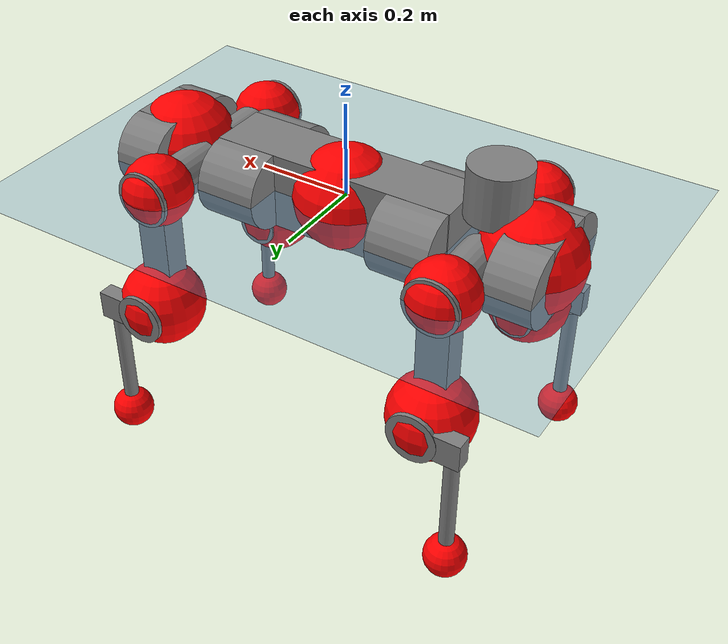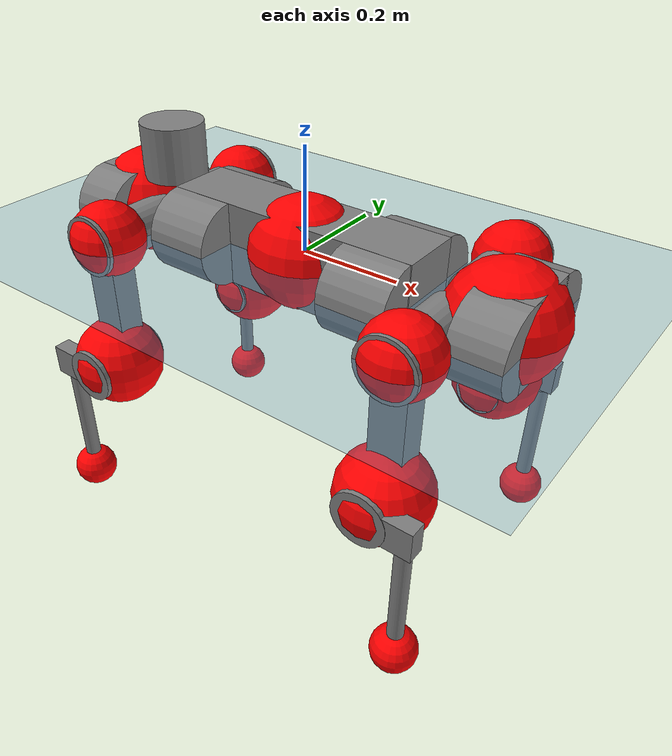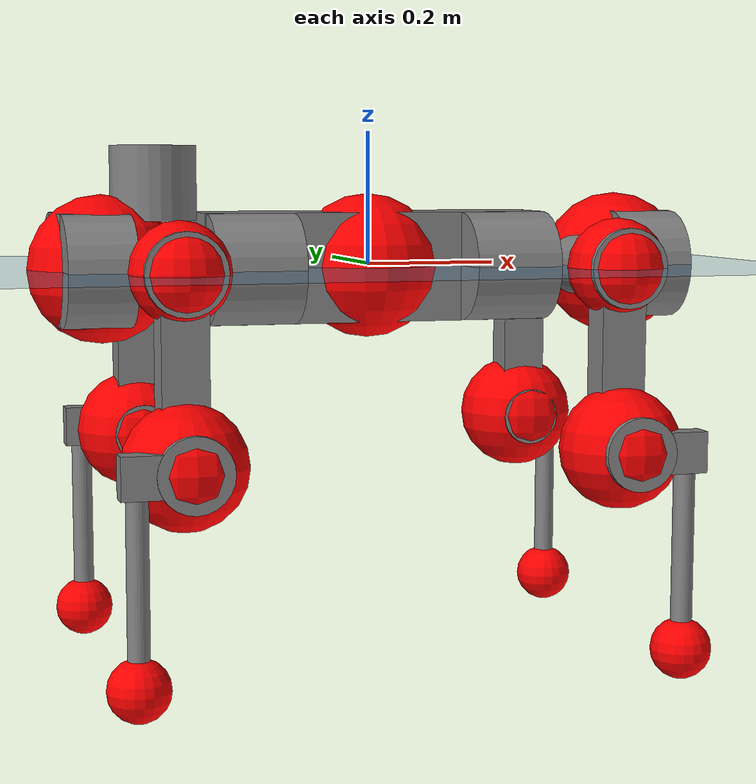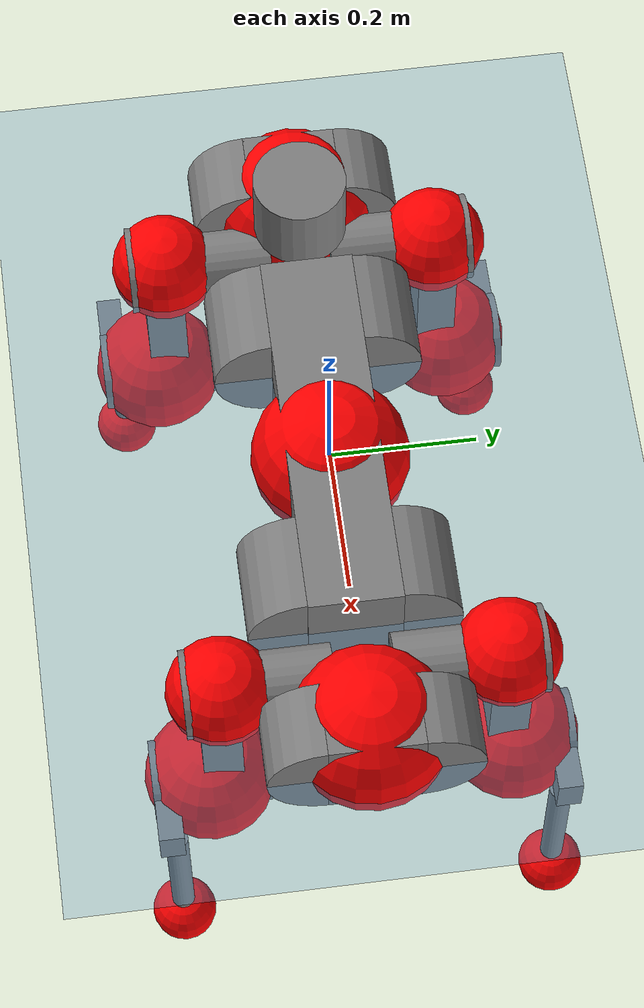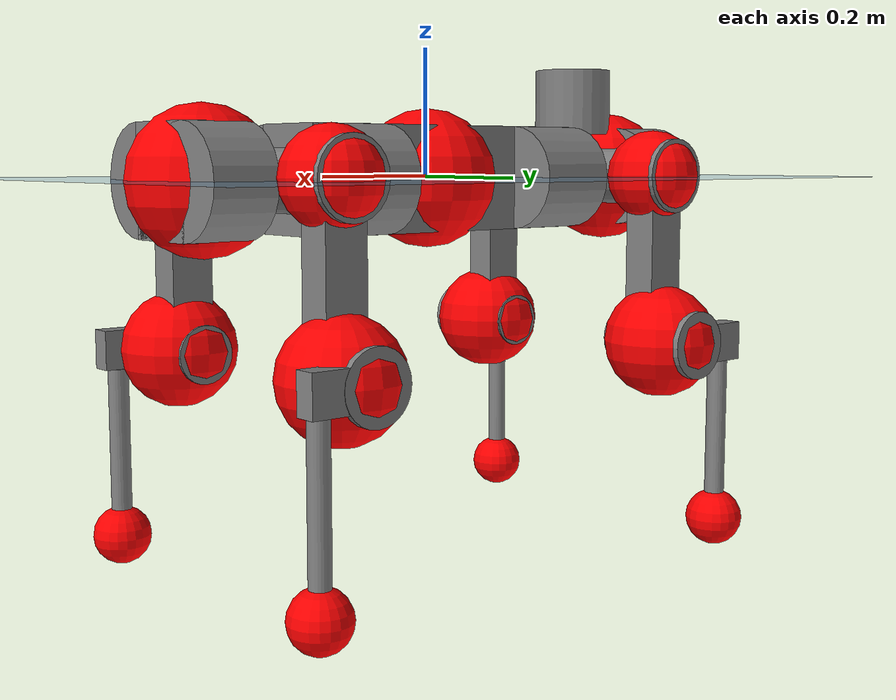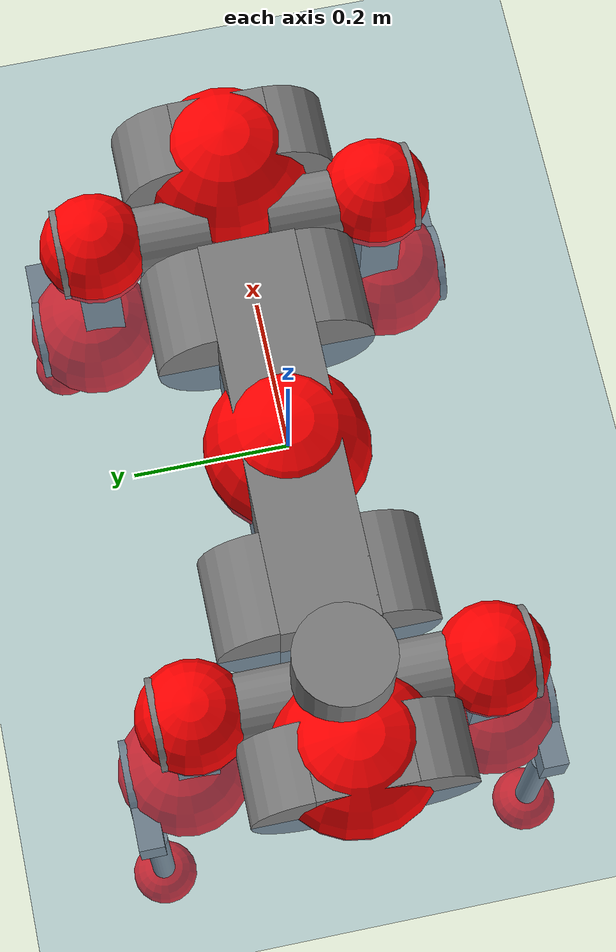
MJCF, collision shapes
<mujoco model="anymal_c">
  <compiler angle="radian" assetdir="assets" balanceinertia="true" inertiafromgeom="false"/>

  <option timestep="0.005" density="1.2" viscosity="2e-05"/>

  <size nkey="1"/>

  <visual>
    <quality shadowsize="8192"/>
    <map shadowclip="0.5"/>
  </visual>

  <default>
    <default class="/">
      <material specular="0" shininess="0.25"/>
      <geom contype="0" conaffinity="0" group="1" solref="-1000 -80"/>
      <site size="0.01 0.005 0.005" group="5"/>
      <general forcelimited="true" forcerange="-80 80" biastype="affine" gainprm="80" biasprm="0 -80 -2"/>
      <default class="anymal_c">
        <joint armature="0.01" damping="0.01" frictionloss="0.1"/>
        <default class="visual">
          <geom type="mesh" group="2"/>
          <default class="visual_zflip"/>
        </default>
        <default class="collision">
          <geom type="cylinder" group="3"/>
          <default class="foot">
            <geom size="0.03 0 0" type="sphere" condim="6" priority="1" friction="0.8 0.02 0.01" solimp="0.015 1 0.03"/>
          </default>
        </default>
      </default>
      <default class="reward_collision_sphere">
        <geom group="5" rgba="1 0 0 1"/>
      </default>
    </default>
  </default>

  <asset>
    <texture type="skybox" colorspace="auto" name="//unnamed_texture_0" builtin="gradient" rgb1="0.95 0.95 0.95" rgb2="0.95 0.95 0.95" width="100" height="600"/>
    <texture type="2d" colorspace="auto" name="texplane" builtin="checker" rgb1="0.345 0.575 0.748" rgb2="0.345 0.575 0.748" markrgb="1 1 1" width="512" height="512"/>
    <texture type="2d" colorspace="linear" name="base" file="base.png"/>
    <texture type="2d" colorspace="linear" name="top_shell" file="top_shell.png"/>
    <texture type="2d" colorspace="linear" name="bottom_shell" file="bottom_shell.png"/>
    <texture type="2d" colorspace="linear" name="remote" file="remote.png"/>
    <texture type="2d" colorspace="linear" name="hatch" file="hatch.png"/>
    <texture type="2d" colorspace="linear" name="handle" file="handle.png"/>
    <texture type="2d" colorspace="linear" name="face" file="face.png"/>
    <texture type="2d" colorspace="linear" name="battery" file="battery.png"/>
    <texture type="2d" colorspace="linear" name="lidar_cage" file="lidar_cage.png"/>
    <texture type="2d" colorspace="linear" name="depth_camera" file="depth_camera.png"/>
    <texture type="2d" colorspace="linear" name="wide_angle_camera" file="wide_angle_camera.png"/>
    <texture type="2d" colorspace="linear" name="lidar" file="lidar.png"/>
    <texture type="2d" colorspace="linear" name="drive" file="drive.png"/>
    <texture type="2d" colorspace="linear" name="hip_l" file="hip_l.png"/>
    <texture type="2d" colorspace="linear" name="shank_l" file="shank_l.png"/>
    <texture type="2d" colorspace="linear" name="foot" file="foot.png"/>
    <texture type="2d" colorspace="linear" name="thigh" file="thigh.png"/>
    <texture type="2d" colorspace="linear" name="shank_r" file="shank_r.png"/>
    <texture type="2d" colorspace="linear" name="hip_r" file="hip_r.png"/>
    <material name="MatPlane" class="/" texture="texplane" texuniform="true" texrepeat="2 2" specular="0.9" shininess="0.5"/>
    <material name="black_plastic" class="/" rgba="0.007 0.007 0.007 1"/>
    <material name="green" class="/" rgba="0.052 0.178 0.033 1"/>
    <material name="red" class="/" rgba="0.178 0.006 0.005 1"/>
    <material name="yellow" class="/" rgba="0.178 0.119 0.006 1"/>
    <material name="lwl" class="/" rgba="0.8 0.8 0.8 1"/>
    <material name="base" class="/" texture="base"/>
    <material name="top_shell" class="/" texture="top_shell"/>
    <material name="bottom_shell" class="/" texture="bottom_shell"/>
    <material name="hip_l" class="/" texture="hip_l"/>
    <material name="thigh" class="/" texture="thigh"/>
    <material name="shank_l" class="/" texture="shank_l"/>
    <material name="foot" class="/" texture="foot"/>
    <material name="hip_r" class="/" texture="hip_r"/>
    <material name="shank" class="/" texture="shank_r"/>
    <material name="hatch" class="/" texture="hatch"/>
    <material name="remote" class="/" texture="remote"/>
    <material name="handle" class="/" texture="handle"/>
    <material name="face" class="/" texture="face"/>
    <material name="depth_camera" class="/" texture="depth_camera"/>
    <material name="wide_angle_camera" class="/" texture="wide_angle_camera"/>
    <material name="battery" class="/" texture="battery"/>
    <material name="lidar_cage" class="/" texture="lidar_cage"/>
    <material name="lidar" class="/" texture="lidar"/>
    <material name="drive" class="/" texture="drive"/>
    <mesh name="base_0" class="/" file="base_0.obj"/>
    <mesh name="base_1" class="/" file="base_1.obj"/>
    <mesh name="base_2" class="/" file="base_2.obj"/>
    <mesh name="base_3" class="/" file="base_3.obj"/>
    <mesh name="base_4" class="/" file="base_4.obj"/>
    <mesh name="base_5" class="/" file="base_5.obj"/>
    <mesh name="top_shell" class="/" file="top_shell.obj"/>
    <mesh name="bottom_shell" class="/" file="bottom_shell.obj"/>
    <mesh name="remote" class="/" file="remote.obj"/>
    <mesh name="handle" class="/" file="handle.obj"/>
    <mesh name="face" class="/" file="face.obj"/>
    <mesh name="wide_angle_camera" class="/" file="wide_angle_camera.obj"/>
    <mesh name="depth_camera" class="/" file="depth_camera.obj"/>
    <mesh name="battery" class="/" file="battery.obj"/>
    <mesh name="lidar_cage" class="/" file="lidar_cage.obj"/>
    <mesh name="lidar" class="/" file="lidar.obj"/>
    <mesh name="drive" class="/" file="drive.obj"/>
    <mesh name="hip_l" class="/" file="hip_l.obj"/>
    <mesh name="thigh" class="/" file="thigh.obj"/>
    <mesh name="shank_l" class="/" file="shank_l.obj"/>
    <mesh name="foot" class="/" file="foot.obj"/>
    <mesh name="hip_r" class="/" file="hip_r.obj"/>
    <mesh name="hatch" class="/" file="hatch.obj"/>
    <mesh name="shank_r" class="/" file="shank_r.obj"/>
  </asset>

  <worldbody>
    <geom name="floor" class="/" size="100 100 0.125" type="plane" group="0" material="MatPlane"/>
    <light name="toplight_shadow" class="/" pos="0 0 5" dir="0.0990148 0.0990148 -0.990148" type="directional" ambient="0.04 0.04 0.04" diffuse="0.55 0.55 0.55" specular="0.12 0.12 0.12"/>
    <light name="toplight_fill" class="/" pos="0 0 5" dir="0.0990148 0.0990148 -0.990148" type="directional" castshadow="false" ambient="0.04 0.04 0.04" diffuse="0.3 0.3 0.3" specular="0.08 0.08 0.08"/>
    <body name="trunk" childclass="anymal_c" pos="-0.00132041 0.00113393 -0.00249924" quat="1 0.000878695 0.000309085 0.000108184">
      <inertial pos="-0.000379575 0.00214834 0.0469683" quat="0.500547 0.500722 0.498576 0.500152" mass="14.7554" diaginertia="0.380996 0.337327 0.159425"/>
      <joint name="//unnamed_joint_0" type="free" armature="0" damping="0" frictionloss="0"/>
      <geom name="//unnamed_geom_1" class="visual" material="green" mesh="base_0"/>
      <geom name="//unnamed_geom_2" class="visual" material="yellow" mesh="base_1"/>
      <geom name="//unnamed_geom_3" class="visual" material="red" mesh="base_2"/>
      <geom name="//unnamed_geom_4" class="visual" material="black_plastic" mesh="base_3"/>
      <geom name="//unnamed_geom_5" class="visual" material="lwl" mesh="base_4"/>
      <geom name="//unnamed_geom_6" class="visual" material="base" mesh="base_5"/>
      <geom name="trunk_1" class="collision" size="0.263889 0.0636974 0.0818967" type="box"/>
      <geom name="trunk_2" class="collision" size="0.0818967 0.0659723" pos="0.196123 0.0620371 0" quat="0.707107 0 0.707107 0"/>
      <geom name="trunk_3" class="collision" size="0.0818967 0.0659723" pos="-0.196123 0.0620371 0" quat="0.707107 0 0.707107 0"/>
      <geom name="trunk_4" class="collision" size="0.0818967 0.0659723" pos="0.196123 -0.0620371 0" quat="0.707107 0 0.707107 0"/>
      <geom name="trunk_5" class="collision" size="0.0818967 0.0659723" pos="-0.196123 -0.0620371 0" quat="0.707107 0 0.707107 0"/>
      <geom name="//unnamed_geom_12" class="visual" material="top_shell" mesh="top_shell"/>
      <geom name="//unnamed_geom_13" class="visual" material="bottom_shell" mesh="bottom_shell"/>
      <geom name="//unnamed_geom_14" class="visual" material="remote" mesh="remote"/>
      <geom name="//unnamed_geom_15" class="visual" material="handle" mesh="handle"/>
      <geom name="//unnamed_geom_16" class="visual" pos="0.373762 0 0" quat="1 0 0 0" material="face" mesh="face"/>
      <geom name="trunk_6" class="collision" size="0.050048 0.0636974 0.0818967" pos="0.423356 0 0" type="box"/>
      <geom name="//unnamed_geom_18" class="collision" size="0.0818967 0.050048" pos="0.423356 0.0620371 0" quat="0.707107 0 0.707107 0"/>
      <geom name="//unnamed_geom_19" class="collision" size="0.0818967 0.050048" pos="0.423356 -0.0620371 0" quat="0.707107 0 0.707107 0"/>
      <geom name="//unnamed_geom_20" class="visual" pos="0.416279 0 -0.02781" quat="0.965926 0 0.258819 0" material="depth_camera" mesh="depth_camera"/>
      <geom name="//unnamed_geom_21" class="visual" pos="0.462581 0 0.0141007" material="wide_angle_camera" mesh="wide_angle_camera"/>
      <geom name="//unnamed_geom_22" class="visual_zflip" pos="-0.373762 0 0" quat="0 0 0 1" material="face" mesh="face"/>
      <geom name="trunk_7" class="collision" size="0.050048 0.0636974 0.0818967" pos="-0.423356 0 0" quat="0 0 0 1" type="box"/>
      <geom name="//unnamed_geom_24" class="collision" size="0.0818967 0.050048" pos="-0.423356 -0.0620371 0" quat="0 -0.707107 0 0.707107"/>
      <geom name="//unnamed_geom_25" class="collision" size="0.0818967 0.050048" pos="-0.423356 0.0620371 0" quat="0 -0.707107 0 0.707107"/>
      <geom name="//unnamed_geom_26" class="visual" pos="-0.416279 0 -0.02781" quat="0 -0.258819 0 0.965926" material="depth_camera" mesh="depth_camera"/>
      <geom name="//unnamed_geom_27" class="visual_zflip" pos="-0.462581 0 0.0141007" quat="0 0 0 1" material="wide_angle_camera" mesh="wide_angle_camera"/>
      <geom name="//unnamed_geom_28" class="visual" material="battery" mesh="battery"/>
      <geom name="//unnamed_geom_29" class="visual" pos="0 0.0675609 0.0270574" quat="0.683013 -0.183013 0.183013 0.683013" material="depth_camera" mesh="depth_camera"/>
      <geom name="//unnamed_geom_30" class="visual" pos="0 -0.0675609 0.0270574" quat="0.683013 0.183013 0.183013 -0.683013" material="depth_camera" mesh="depth_camera"/>
      <geom name="//unnamed_geom_31" class="visual" pos="-0.328225 0 0.0692318" quat="1 0 0 0" material="lidar_cage" mesh="lidar_cage"/>
      <geom name="trunk_8" class="collision" size="0.0636974 0.0545978" pos="-0.328225 0 0.125748"/>
      <geom name="//unnamed_geom_33" class="visual" pos="-0.328225 -6.07877e-06 0.133942" quat="0.707107 0 0 -0.707107" material="lidar" mesh="lidar"/>
      <geom name="//unnamed_geom_34" class="visual" pos="0.270425 0.0921892 -9.60576e-10" quat="0.258819 0.965926 0 0" material="drive" mesh="drive"/>
      <geom name="//unnamed_geom_35" class="visual" pos="0.270425 -0.0921892 9.60576e-10" quat="0.258819 -0.965926 0 0" material="drive" mesh="drive"/>
      <geom name="//unnamed_geom_36" class="visual" pos="-0.270425 0.0921892 9.60576e-10" quat="0 0 0.965926 -0.258819" material="drive" mesh="drive"/>
      <geom name="//unnamed_geom_37" class="visual" pos="-0.270425 -0.0921892 -9.60576e-10" quat="0 0 -0.965926 -0.258819" material="drive" mesh="drive"/>
      <geom name="//unnamed_geom_38" class="visual" pos="0.104599 0 0.0687608" quat="1 0 0 0" material="hatch" mesh="hatch"/>
      <geom name="//unnamed_geom_39" class="reward_collision_sphere" size="0.109196"/>
      <geom name="//unnamed_geom_40" class="reward_collision_sphere" size="0.109196" pos="0.405773 0 0"/>
      <geom name="//unnamed_geom_41" class="reward_collision_sphere" size="0.109196" pos="-0.405773 0 0"/>
      <site name="imu" pos="0.235834 0.0202103 0.0299769" size="0.00909963"/>
      <camera name="track" pos="0 -1.77249 0" quat="0.707107 0.707107 0 0" mode="trackcom"/>
      <camera name="ego_camera" pos="0.405773 0 -0.0376772" quat="-0.5 -0.5 0.5 0.5"/>
      <body name="LF_HIP" pos="0.270147 0.0919118 0.000214872" quat="0.259397 0.965771 0.000253644 -0.000809696">
        <inertial pos="0.0487197 -0.0133805 -0.0100104" quat="-0.130283 0.713229 -0.135934 0.675169" mass="2.07091" diaginertia="0.00343237 0.00264546 0.00247976"/>
        <joint name="LF_HAA" pos="0 0 0" axis="0.999917 0.00574023 -0.0115565" range="-0.737251 0.492766" armature="0.0095574" damping="0.0101506" frictionloss="0.0850363"/>
        <geom name="//unnamed_geom_42" class="visual" pos="0 -5.65064e-05 9.28112e-06" quat="0.258819 -0.965926 0 0" material="hip_l" mesh="hip_l"/>
        <geom name="//unnamed_geom_43" class="visual" pos="0.0540128 -0.0652641 -0.0380921" quat="0.183013 -0.683013 0.683013 0.183013" material="drive" mesh="drive"/>
        <geom name="//unnamed_geom_44" class="collision" size="0.0454982 0.0636974" pos="0.0540128 -0.0105993 -0.00650402" quat="-0.353553 -0.612372 0.612372 -0.353553"/>
        <body name="LF_THIGH" pos="0.0541028 -0.0652373 -0.0440164" quat="0.182501 -0.683156 0.682894 0.183431">
          <inertial pos="0.028883 0.00104479 -0.228808" quat="0.993496 0.00467274 -0.0838768 0.0768643" mass="2.25004" diaginertia="0.018245 0.0157509 0.00314882"/>
          <joint name="LF_HFE" pos="0 0 0" axis="0.999976 0.000677059 0.00692713" stiffness="0.0126186" range="-3.13335 3.09885" armature="0.00806" damping="0.0151073" frictionloss="0.0916418"/>
          <geom name="//unnamed_geom_45" class="visual" pos="0.000307844 4.8509e-07 0" quat="0.707107 0 0 -0.707107" material="thigh" mesh="thigh"/>
          <geom name="//unnamed_geom_46" class="collision" size="0.0591476 0.0363985" pos="0.0360687 0 0" quat="0.5 0.5 -0.5 -0.5"/>
          <geom name="//unnamed_geom_47" class="collision" size="0.0341236 0.0272989 0.128591" pos="0.0270515 0 -0.133108" quat="0.707107 0 0 -0.707107" type="box"/>
          <geom name="//unnamed_geom_48" class="visual" pos="0.0904422 0 -0.26845" quat="1 0 0 0" material="drive" mesh="drive"/>
          <geom name="//unnamed_geom_49" class="collision" size="0.0454982 0.0636974" pos="0.027322 0 -0.26845" quat="0.707107 0 0.707107 0"/>
          <geom name="//unnamed_geom_50" class="reward_collision_sphere" size="0.0727971" pos="0.0225429 0 0"/>
          <body name="LF_SHANK" pos="0.0877008 -0.00178384 -0.266962" quat="1 7.20166e-07 -3.10733e-06 1.49555e-06">
            <inertial pos="0.00246663 -0.0565118 -0.0744494" quat="0.992786 -0.116938 -0.00100841 -0.0264474" mass="0.433135" diaginertia="0.00609962 0.00485675 0.000823629"/>
            <joint name="LF_KFE" pos="0 0 0" axis="0.99999 0.00312277 -0.00323546" stiffness="0.00797912" range="-3.10711 3.14621" armature="0.00905978" damping="0.00951631" frictionloss="0.087204"/>
            <geom name="//unnamed_geom_51" class="visual" pos="0.000100381 0.000535238 0" quat="0.707107 0 0 -0.707107" material="shank_l" mesh="shank_l"/>
            <geom name="LF_kfe_act" class="collision" size="0.0545978 0.0181993" pos="0.0180343 0 0" quat="0.5 0.5 -0.5 -0.5"/>
            <geom name="//unnamed_geom_53" class="collision" size="0.052322 0.0307113 0.0172893" pos="0.0180343 -0.0509582 0" quat="0.5 0.5 -0.5 -0.5" type="box"/>
            <geom name="//unnamed_geom_54" class="visual" pos="0.0117674 -0.0777727 -0.318344" quat="0.382683 0 0 -0.92388" material="foot" mesh="foot"/>
            <geom name="LF_calf" class="collision" size="0.0159244 0.128534" pos="0.0117674 -0.0779452 -0.159172" quat="0.707107 0 0 -0.707107"/>
            <geom name="LF_foot" class="foot" size="0.0289072" pos="0.0117674 -0.0779452 -0.29715" quat="0.707107 0 0 -0.707107"/>
            <geom name="//unnamed_geom_57" class="reward_collision_sphere" size="0.0909963" pos="-0.0450858 0 0"/>
            <geom name="//unnamed_geom_58" class="reward_collision_sphere" size="0.0454982" pos="0.0117674 -0.0779452 -0.29715"/>
            <site name="LF_foot" class="foot" pos="0.0117674 -0.0779452 -0.29715" quat="0.707107 0 0 -0.707107" size="0.00909963"/>
          </body>
        </body>
      </body>
      <body name="RF_HIP" pos="0.273438 -0.0898385 -0.000934922" quat="0.258842 -0.96592 0.000287609 3.38878e-05">
        <inertial pos="0.0488871 0.012269 -0.00877631" quat="0.139997 0.678168 0.129522 0.709727" mass="2.05458" diaginertia="0.00332749 0.00273296 0.00244791"/>
        <joint name="RF_HAA" pos="0 0 0" axis="0.999994 0.00247936 -0.00226458" range="-0.468974 0.714694" armature="0.00890403" damping="0.00814992" frictionloss="0.1032"/>
        <geom name="//unnamed_geom_59" class="visual" pos="0 5.65059e-05 9.2811e-06" quat="0.258819 0.965926 0 0" material="hip_r" mesh="hip_r"/>
        <geom name="//unnamed_geom_60" class="visual" pos="0.0540128 0.0652641 -0.0380921" quat="0.183013 0.683013 0.683013 -0.183013" material="drive" mesh="drive"/>
        <geom name="//unnamed_geom_61" class="collision" size="0.0454982 0.0636974" pos="0.0540128 0.0105993 -0.00650402" quat="-0.353553 0.612372 0.612372 0.353553"/>
        <body name="RF_THIGH" pos="0.0568573 0.0636686 -0.0405664" quat="0.182228 0.682919 0.683369 -0.182815">
          <inertial pos="0.0273704 -1.88677e-05 -0.229817" quat="0.993406 0.00635802 -0.0727524 0.0883837" mass="2.35082" diaginertia="0.0172071 0.0160409 0.00304454"/>
          <joint name="RF_HFE" pos="0 0 0" axis="0.999927 -0.000617606 -0.0120653" stiffness="0.00737579" range="-3.11597 3.15118" armature="0.00887451" damping="0.0112487" frictionloss="0.100523"/>
          <geom name="//unnamed_geom_62" class="visual" pos="0.000307844 4.8509e-07 0" quat="0.707107 0 0 -0.707107" material="thigh" mesh="thigh"/>
          <geom name="//unnamed_geom_63" class="collision" size="0.0591476 0.0363985" pos="0.0360687 0 0" quat="0.5 0.5 0.5 0.5"/>
          <geom name="//unnamed_geom_64" class="collision" size="0.0341236 0.0272989 0.128591" pos="0.0270515 0 -0.133108" quat="0.707107 0 0 0.707107" type="box"/>
          <geom name="//unnamed_geom_65" class="visual" pos="0.0904422 0 -0.26845" quat="1 0 0 0" material="drive" mesh="drive"/>
          <geom name="//unnamed_geom_66" class="collision" size="0.0454982 0.0636974" pos="0.027322 0 -0.26845" quat="0.707107 0 0.707107 0"/>
          <geom name="//unnamed_geom_67" class="reward_collision_sphere" size="0.0727971" pos="0.0225429 0 0"/>
          <body name="RF_SHANK" pos="0.0902482 0.00017074 -0.266758" quat="1 0.000153536 -9.82604e-05 -0.000169237">
            <inertial pos="0.00720492 0.0534314 -0.0787817" quat="0.99272 0.117572 0.0105045 0.0239275" mass="0.454596" diaginertia="0.00648889 0.00507438 0.000867333"/>
            <joint name="RF_KFE" pos="0 0 0" axis="0.999989 0.00451513 0.00132857" range="-3.14208 3.08954" armature="0.0095478" damping="0.0091654" frictionloss="0.0904635"/>
            <geom name="//unnamed_geom_68" class="visual" pos="0.000100381 -0.000535237 0" quat="0.707107 0 0 0.707107" material="shank" mesh="shank_r"/>
            <geom name="RF_kfe_act" class="collision" size="0.0545978 0.0181993" pos="0.0180343 0 0" quat="0.5 0.5 0.5 0.5"/>
            <geom name="//unnamed_geom_70" class="collision" size="0.052322 0.0307113 0.0172893" pos="0.0180343 0.0509582 0" quat="0.5 0.5 0.5 0.5" type="box"/>
            <geom name="//unnamed_geom_71" class="visual" pos="0.0117674 0.0777727 -0.318344" quat="0.382683 0 0 0.92388" material="foot" mesh="foot"/>
            <geom name="RF_calf" class="collision" size="0.0159244 0.128534" pos="0.0117674 0.0779452 -0.159172" quat="0.707107 0 0 0.707107"/>
            <geom name="RF_foot" class="foot" size="0.0296288" pos="0.0117674 0.0779452 -0.29715" quat="0.707107 0 0 0.707107"/>
            <geom name="//unnamed_geom_74" class="reward_collision_sphere" size="0.0909963" pos="-0.0450858 0 0"/>
            <geom name="//unnamed_geom_75" class="reward_collision_sphere" size="0.0454982" pos="0.0117674 0.0779452 -0.29715"/>
            <site name="RF_foot" class="foot" pos="0.0117674 0.0779452 -0.29715" quat="0.707107 0 0 0.707107" size="0.00909963"/>
          </body>
        </body>
      </body>
      <body name="LH_HIP" pos="-0.270767 0.0901719 0.00122277" quat="0.000216048 -0.000321115 0.965759 -0.259442">
        <inertial pos="0.0503953 0.0131416 -0.00708487" quat="0.140025 0.678192 0.127445 0.710075" mass="2.05376" diaginertia="0.00345149 0.00260902 0.00241578"/>
        <joint name="LH_HAA" pos="0 0 0" axis="0.999998 0.000476894 -0.00176811" stiffness="0.000155928" range="-0.535204 0.707251" armature="0.00916922" damping="0" frictionloss="0.0879508"/>
        <geom name="//unnamed_geom_76" class="visual" pos="0 5.65059e-05 9.2811e-06" quat="-0.258819 -0.965926 0 0" material="hip_r" mesh="hip_r"/>
        <geom name="//unnamed_geom_77" class="visual" pos="0.0540128 0.0652641 -0.0380921" quat="0.183013 0.683013 0.683013 -0.183013" material="drive" mesh="drive"/>
        <geom name="//unnamed_geom_78" class="collision" size="0.0454982 0.0636974" pos="0.0540128 0.0105993 -0.00650402" quat="-0.353553 0.612372 0.612372 0.353553"/>
        <body name="LH_THIGH" pos="0.0524375 0.0631083 -0.0381883" quat="0.183087 0.682899 0.683132 -0.182917">
          <inertial pos="0.0282482 0.00107401 -0.228857" quat="0.992672 -0.00508776 -0.0792072 0.0911189" mass="2.3406" diaginertia="0.018939 0.0167047 0.00324004"/>
          <joint name="LH_HFE" pos="0 0 0" axis="0.999999 -0.00134695 -0.000143549" range="-3.12763 3.09991" armature="0.0103223" damping="0.0205447" frictionloss="0.0952951"/>
          <geom name="//unnamed_geom_79" class="visual" pos="0.000307844 4.8509e-07 0" quat="0.707107 0 0 -0.707107" material="thigh" mesh="thigh"/>
          <geom name="//unnamed_geom_80" class="collision" size="0.0591476 0.0363985" pos="0.0360687 0 0" quat="0.5 0.5 -0.5 -0.5"/>
          <geom name="//unnamed_geom_81" class="collision" size="0.0341236 0.0272989 0.128591" pos="0.0270515 0 -0.133108" quat="0.707107 0 0 -0.707107" type="box"/>
          <geom name="//unnamed_geom_82" class="visual" pos="0.0904422 0 -0.26845" quat="1 0 0 0" material="drive" mesh="drive"/>
          <geom name="//unnamed_geom_83" class="collision" size="0.0454982 0.0636974" pos="0.027322 0 -0.26845" quat="0.707107 0 0.707107 0"/>
          <geom name="//unnamed_geom_84" class="reward_collision_sphere" size="0.0727971" pos="0.0225429 0 0"/>
          <body name="LH_SHANK" pos="0.0887717 0.00214348 -0.269548" quat="1 -2.39698e-05 8.09793e-05 -7.10195e-06">
            <inertial pos="0.00718986 0.0521309 -0.0743616" quat="0.992784 0.117603 -0.00135482 0.0234061" mass="0.436524" diaginertia="0.00603492 0.00521068 0.000799941"/>
            <joint name="LH_KFE" pos="0 0 0" axis="0.999916 0.0115633 -0.00578167" stiffness="0.0125279" range="-3.09228 3.14388" armature="0.00945777" damping="0.0153783" frictionloss="0.100818"/>
            <geom name="//unnamed_geom_85" class="visual" pos="0.000100381 -0.000535237 0" quat="-0.707107 0 0 -0.707107" material="shank" mesh="shank_r"/>
            <geom name="LH_kfe_act" class="collision" size="0.0545978 0.0181993" pos="0.0180343 0 0" quat="0.5 0.5 -0.5 -0.5"/>
            <geom name="//unnamed_geom_87" class="collision" size="0.052322 0.0307113 0.0172893" pos="0.0180343 0.0509582 0" quat="0.5 0.5 -0.5 -0.5" type="box"/>
            <geom name="//unnamed_geom_88" class="visual" pos="0.0117674 0.0777727 -0.318344" quat="-0.382683 0 0 -0.92388" material="foot" mesh="foot"/>
            <geom name="LH_calf" class="collision" size="0.0159244 0.128534" pos="0.0117674 0.0779452 -0.159172" quat="0.707107 0 0 -0.707107"/>
            <geom name="LH_foot" class="foot" size="0.0310443" pos="0.0117674 0.0779452 -0.29715" quat="0.707107 0 0 -0.707107"/>
            <geom name="//unnamed_geom_91" class="reward_collision_sphere" size="0.0909963" pos="-0.0450858 0 0"/>
            <geom name="//unnamed_geom_92" class="reward_collision_sphere" size="0.0454982" pos="0.0117674 0.0779452 -0.29715"/>
            <site name="LH_foot" class="foot" pos="0.0117674 0.0779452 -0.29715" quat="0.707107 0 0 -0.707107" size="0.00909963"/>
          </body>
        </body>
      </body>
      <body name="RH_HIP" pos="-0.270231 -0.0955069 0.000382553" quat="7.34206e-05 0.00108638 -0.965851 -0.259096">
        <inertial pos="0.0501584 -0.0141118 -0.00929499" quat="-0.128417 0.709928 -0.135094 0.679162" mass="2.22036" diaginertia="0.00351242 0.00269529 0.00250997"/>
        <joint name="RH_HAA" pos="0 0 0" axis="0.999939 -0.0045202 -0.0100449" stiffness="0.000468715" range="-0.671099 0.482519" armature="0.00807423" damping="0.00873337" frictionloss="0.103375"/>
        <geom name="//unnamed_geom_93" class="visual" pos="0 -5.65064e-05 9.28112e-06" quat="-0.258819 0.965926 0 0" material="hip_l" mesh="hip_l"/>
        <geom name="//unnamed_geom_94" class="visual" pos="0.0540128 -0.0652641 -0.0380921" quat="-0.183013 0.683013 -0.683013 -0.183013" material="drive" mesh="drive"/>
        <geom name="//unnamed_geom_95" class="collision" size="0.0454982 0.0636974" pos="0.0540128 -0.0105993 -0.00650402" quat="0.353553 0.612372 -0.612372 0.353553"/>
        <body name="RH_THIGH" pos="0.0559002 -0.0627422 -0.0404688" quat="-0.182502 0.683099 -0.683145 -0.182705">
          <inertial pos="0.0260011 0.00128092 -0.230973" quat="0.993032 -0.00709823 -0.080783 0.0855068" mass="2.29357" diaginertia="0.018555 0.0162131 0.00310752"/>
          <joint name="RH_HFE" pos="0 0 0" axis="0.999891 -0.000442816 0.0147595" range="-3.11563 3.12892" armature="0.00877941" damping="0.00609443" frictionloss="0.089861"/>
          <geom name="//unnamed_geom_96" class="visual" pos="0.000307844 4.8509e-07 0" quat="0.707107 0 0 -0.707107" material="thigh" mesh="thigh"/>
          <geom name="//unnamed_geom_97" class="collision" size="0.0591476 0.0363985" pos="0.0360687 0 0" quat="0.5 0.5 0.5 0.5"/>
          <geom name="//unnamed_geom_98" class="collision" size="0.0341236 0.0272989 0.128591" pos="0.0270515 0 -0.133108" quat="0.707107 0 0 0.707107" type="box"/>
          <geom name="//unnamed_geom_99" class="visual" pos="0.0904422 0 -0.26845" quat="1 0 0 0" material="drive" mesh="drive"/>
          <geom name="//unnamed_geom_100" class="collision" size="0.0454982 0.0636974" pos="0.027322 0 -0.26845" quat="0.707107 0 0.707107 0"/>
          <geom name="//unnamed_geom_101" class="reward_collision_sphere" size="0.0727971" pos="0.0225429 0 0"/>
          <body name="RH_SHANK" pos="0.088812 -0.000260949 -0.268398" quat="1 -0.000485203 -0.000456754 -0.000403048">
            <inertial pos="0.00777633 -0.0539117 -0.0760694" quat="0.992348 -0.119915 0.00188218 -0.0293572" mass="0.428843" diaginertia="0.0057858 0.00493889 0.00080972"/>
            <joint name="RH_KFE" pos="0 0 0" axis="0.999964 0.00764541 0.00365602" range="-3.12393 3.1799" armature="0.00802339" damping="0.0181655" frictionloss="0.0952915"/>
            <geom name="//unnamed_geom_102" class="visual" pos="0.000100381 0.000535238 0" quat="0.707107 0 0 -0.707107" material="shank_l" mesh="shank_l"/>
            <geom name="RH_kfe_act" class="collision" size="0.0545978 0.0181993" pos="0.0180343 0 0" quat="0.5 0.5 0.5 0.5"/>
            <geom name="//unnamed_geom_104" class="collision" size="0.052322 0.0307113 0.0172893" pos="0.0180343 -0.0509582 0" quat="0.5 0.5 0.5 0.5" type="box"/>
            <geom name="//unnamed_geom_105" class="visual" pos="0.0117674 -0.0777727 -0.318344" quat="0.382683 0 0 -0.92388" material="foot" mesh="foot"/>
            <geom name="RH_calf" class="collision" size="0.0159244 0.128534" pos="0.0117674 -0.0779452 -0.159172" quat="0.707107 0 0 0.707107"/>
            <geom name="RH_foot" class="foot" size="0.0209454" pos="0.0117674 -0.0779452 -0.29715" quat="0.707107 0 0 0.707107"/>
            <geom name="//unnamed_geom_108" class="reward_collision_sphere" size="0.0909963" pos="-0.0450858 0 0"/>
            <geom name="//unnamed_geom_109" class="reward_collision_sphere" size="0.0454982" pos="0.0117674 -0.0779452 -0.29715"/>
            <site name="RH_foot" class="foot" pos="0.0117674 -0.0779452 -0.29715" quat="0.707107 0 0 0.707107" size="0.00909963"/>
          </body>
        </body>
      </body>
    </body>
  </worldbody>

  <contact>
    <pair class="/" geom1="floor" geom2="LF_foot" name="//unnamed_contact_0"/>
    <pair class="/" geom1="floor" geom2="RF_foot" name="//unnamed_contact_1"/>
    <pair class="/" geom1="floor" geom2="LH_foot" name="//unnamed_contact_2"/>
    <pair class="/" geom1="floor" geom2="RH_foot" name="//unnamed_contact_3"/>
  </contact>

  <actuator>
    <general name="LF_HAA" class="/" joint="LF_HAA" forcerange="-80.4133 80.4133" gainprm="66.4143" biasprm="0 -66.4143 -1.77673"/>
    <general name="LF_HFE" class="/" joint="LF_HFE" forcerange="-72.5837 72.5837" gainprm="66.4143" biasprm="0 -66.4143 -1.77673"/>
    <general name="LF_KFE" class="/" joint="LF_KFE" forcerange="-74.0824 74.0824" gainprm="66.4143" biasprm="0 -66.4143 -1.77673"/>
    <general name="RF_HAA" class="/" joint="RF_HAA" forcerange="-75.5448 75.5448" gainprm="66.4143" biasprm="0 -66.4143 -1.77673"/>
    <general name="RF_HFE" class="/" joint="RF_HFE" forcerange="-79.4559 79.4559" gainprm="66.4143" biasprm="0 -66.4143 -1.77673"/>
    <general name="RF_KFE" class="/" joint="RF_KFE" forcerange="-64.7201 64.7201" gainprm="66.4143" biasprm="0 -66.4143 -1.77673"/>
    <general name="LH_HAA" class="/" joint="LH_HAA" forcerange="-70.1292 70.1292" gainprm="66.4143" biasprm="0 -66.4143 -1.77673"/>
    <general name="LH_HFE" class="/" joint="LH_HFE" forcerange="-80.3604 80.3604" gainprm="66.4143" biasprm="0 -66.4143 -1.77673"/>
    <general name="LH_KFE" class="/" joint="LH_KFE" forcerange="-74.5537 74.5537" gainprm="66.4143" biasprm="0 -66.4143 -1.77673"/>
    <general name="RH_HAA" class="/" joint="RH_HAA" forcerange="-72.67 72.67" gainprm="66.4143" biasprm="0 -66.4143 -1.77673"/>
    <general name="RH_HFE" class="/" joint="RH_HFE" forcerange="-79.0048 79.0048" gainprm="66.4143" biasprm="0 -66.4143 -1.77673"/>
    <general name="RH_KFE" class="/" joint="RH_KFE" forcerange="-71.6747 71.6747" gainprm="66.4143" biasprm="0 -66.4143 -1.77673"/>
  </actuator>

  <sensor>
    <gyro site="imu" name="imu_angular_velocity"/>
    <velocimeter site="imu" name="imu_linear_velocity"/>
    <framelinvel objtype="site" objname="LF_foot" name="LF_foot_global_linear_velocity"/>
    <framelinvel objtype="site" objname="RF_foot" name="RF_foot_global_linear_velocity"/>
    <framelinvel objtype="site" objname="LH_foot" name="LH_foot_global_linear_velocity"/>
    <framelinvel objtype="site" objname="RH_foot" name="RH_foot_global_linear_velocity"/>
  </sensor>

  <keyframe>
    <key name="home" qpos="0 0 0.55 1 0 0 0 0 0.4 -0.8 0 -0.4 0.8 0 -0.4 0.8 0 0.4 -0.8"/>
  </keyframe>
</mujoco>
